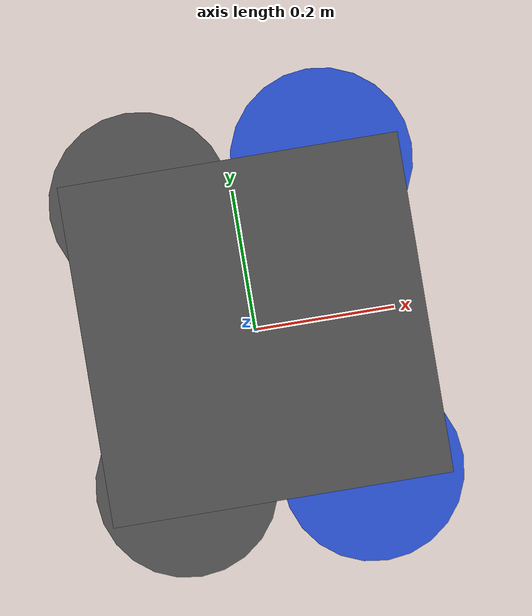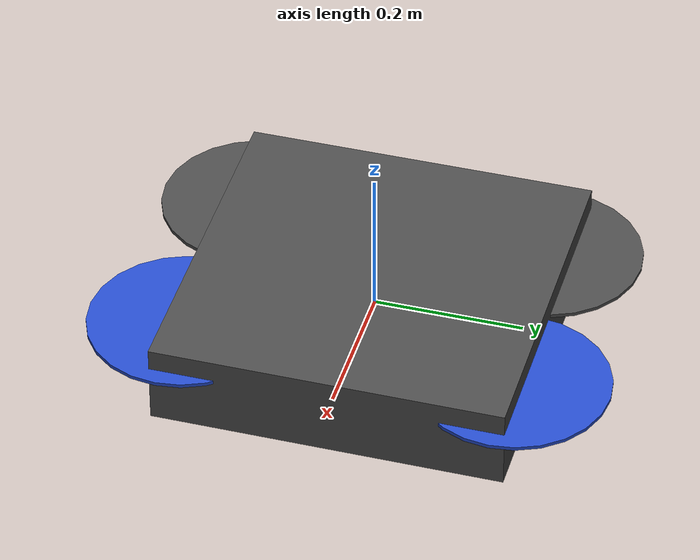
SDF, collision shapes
<?xml version="1.0" ?>
<sdf version='1.6'>
  <model name='iris'>
    <link name='base_link'>
      <pose>0 0 0 0 0 0</pose>
      <inertial>
        <pose>0 0 0 0 0 0</pose>
        <mass>1.5</mass>
        <inertia>
          <ixx>0.029125</ixx>
          <ixy>0</ixy>
          <ixz>0</ixz>
          <iyy>0.029125</iyy>
          <iyz>0</iyz>
          <izz>0.055225</izz>
        </inertia>
      </inertial>
      <collision name='base_link_inertia_collision'>
        <pose>0 0 0 0 0 0</pose>
        <geometry>
          <box>
            <size>0.47 0.47 0.11</size>
          </box>
        </geometry>
        <surface>
          <contact>
            <ode>
              <min_depth>0.001</min_depth>
              <max_vel>0</max_vel>
            </ode>
          </contact>
          <friction>
            <ode/>
          </friction>
        </surface>
      </collision>
      <visual name='base_link_inertia_visual'>
        <pose>0 0 0 0 0 0</pose>
        <geometry>
          <mesh>
            <scale>1 1 1</scale>
            <uri>model://iris/meshes/iris.stl</uri>
          </mesh>
        </geometry>
        <material>
          <script>
            <name>Gazebo/DarkGrey</name>
            <uri>file://media/materials/scripts/gazebo.material</uri>
          </script>
        </material>
      </visual>
      <gravity>1</gravity>
      <velocity_decay/>
    </link>
    <link name='/imu_link'>
      <pose>0 0 0.02 0 0 0</pose>
      <inertial>
        <pose>0 0 0 0 0 0</pose>
        <mass>0.015</mass>
        <inertia>
          <ixx>1e-05</ixx>
          <ixy>0</ixy>
          <ixz>0</ixz>
          <iyy>1e-05</iyy>
          <iyz>0</iyz>
          <izz>1e-05</izz>
        </inertia>
      </inertial>
    </link>
    <joint name='/imu_joint' type='revolute'>
      <child>/imu_link</child>
      <parent>base_link</parent>
      <axis>
        <xyz>1 0 0</xyz>
        <limit>
          <lower>0</lower>
          <upper>0</upper>
          <effort>0</effort>
          <velocity>0</velocity>
        </limit>
        <dynamics>
          <spring_reference>0</spring_reference>
          <spring_stiffness>0</spring_stiffness>
        </dynamics>
        <use_parent_model_frame>1</use_parent_model_frame>
      </axis>
    </joint>
    <joint name="realsense_camera_joint" type="fixed">
      <child>camera_link</child>
      <parent>base_link</parent>
      <axis>
        <xyz>0 0 1</xyz>
        <limit>
          <upper>0</upper>
          <lower>0</lower>
        </limit>
        <use_parent_model_frame>1</use_parent_model_frame>
      </axis>
    </joint>
    <link name="camera_link">
      <pose>0.12 0 0 1.5708 0 1.5708</pose>
      <inertial>
        <mass>0.0564</mass>
        <inertia>
          <ixx>4.1e-05</ixx>
          <ixy>0</ixy>
          <ixz>0</ixz>
          <iyy>5.9e-06</iyy>
          <iyz>0</iyz>
          <izz>5.9e-06</izz>
        </inertia>
      </inertial>
      <self_collide>0</self_collide>
      <kinematic>0</kinematic>
      <gravity>1</gravity>
      <visual name="visual">
        <geometry>
         <mesh>
            <uri>model://D435i/meshes/D435i.dae</uri>
          </mesh>
        </geometry>
      </visual>
      <collision name='collision'>
        <geometry>
          <box>
            <size>0.02505 0.090 0.025</size>
          </box>
        </geometry>
        <surface>
          <friction>
            <ode>
              <mu>1</mu>
              <mu2>1</mu2>
              <fdir1>0 0 0</fdir1>
              <slip1>0</slip1>
              <slip2>0</slip2>
            </ode>
          </friction>
          <bounce>
            <restitution_coefficient>0</restitution_coefficient>
            <threshold>1e+06</threshold>
          </bounce>
          <contact>
            <collide_without_contact>0</collide_without_contact>
            <collide_without_contact_bitmask>1</collide_without_contact_bitmask>
            <collide_bitmask>1</collide_bitmask>
            <ode>
              <soft_cfm>0</soft_cfm>
              <soft_erp>0.2</soft_erp>
              <kp>1e+13</kp>
              <kd>1</kd>
              <max_vel>0.01</max_vel>
              <min_depth>0</min_depth>
            </ode>
            <bullet>
              <split_impulse>1</split_impulse>
              <split_impulse_penetration_threshold>-0.01</split_impulse_penetration_threshold>
              <soft_cfm>0</soft_cfm>
              <soft_erp>0.2</soft_erp>
              <kp>1e+13</kp>
              <kd>1</kd>
            </bullet>
          </contact>
        </surface>
      </collision>
    </link>
    <link name="camera_color_frame">
      <pose>0.12 0.0325 0.00 0.00 -0.00 -0.00</pose>
      <inertial>
        <pose frame=''>0 0 0 0 -0 0</pose>
        <mass>0.0015</mass>
        <inertia>
          <ixx>1e-06</ixx>
          <ixy>0</ixy>
          <ixz>0</ixz>
          <iyy>1e-06</iyy>
          <iyz>0</iyz>
          <izz>1e-06</izz>
        </inertia>
      </inertial>
      <sensor name="color" type="camera">
        <camera name="color">
          <horizontal_fov>1.211</horizontal_fov>
          <image>
            <width>640</width>
            <height>480</height>
            <format>RGB_INT8</format>
          </image>
          <clip>
            <near>0.1</near>
            <far>100</far>
          </clip>
          <noise>
            <type>gaussian</type>
            <mean>0.0</mean>
            <stddev>0.007</stddev>
          </noise>
        </camera>
        <always_on>1</always_on>
        <update_rate>30</update_rate>
        <visualize>1</visualize>
      </sensor>
    </link>
    <joint name='camera_color_joint' type='revolute'>
      <child>camera_color_frame</child>
      <parent>camera_link</parent>
      <axis>
        <xyz>1 0 0</xyz>
        <limit>
          <lower>0</lower>
          <upper>0</upper>
          <effort>0</effort>
          <velocity>0</velocity>
        </limit>
        <dynamics>
          <spring_reference>0</spring_reference>
          <spring_stiffness>0</spring_stiffness>
        </dynamics>
        <use_parent_model_frame>1</use_parent_model_frame>
      </axis>
    </joint>
    <link name="camera_ired1_frame">
      <pose>0.12 0.02 0 0 0 0</pose>
      <inertial>
        <pose frame=''>0 0 0 0 -0 0</pose>
        <mass>0.0015</mass>
        <inertia>
          <ixx>1e-06</ixx>
          <ixy>0</ixy>
          <ixz>0</ixz>
          <iyy>1e-06</iyy>
          <iyz>0</iyz>
          <izz>1e-06</izz>
        </inertia>
      </inertial>
      <sensor name="ired1" type="camera">
        <camera name="ired1">
          <horizontal_fov>1.571</horizontal_fov>
          <image>
            <width>640</width>
            <height>480</height>
            <format>L_INT8</format>
          </image>
          <clip>
            <near>0.1</near>
            <far>100</far>
          </clip>
          <noise>
            <type>gaussian</type>
            <mean>0.0</mean>
            <stddev>0.007</stddev>
          </noise>
        </camera>
        <always_on>1</always_on>
        <update_rate>30</update_rate>
        <visualize>0</visualize>
      </sensor>
    </link>
    <joint name='camera_ired1_joint' type='revolute'>
      <child>camera_ired1_frame</child>
      <parent>camera_link</parent>
      <axis>
        <xyz>1 0 0</xyz>
        <limit>
          <lower>0</lower>
          <upper>0</upper>
          <effort>0</effort>
          <velocity>0</velocity>
        </limit>
        <dynamics>
          <spring_reference>0</spring_reference>
          <spring_stiffness>0</spring_stiffness>
        </dynamics>
        <use_parent_model_frame>1</use_parent_model_frame>
      </axis>
    </joint>
    <link name="camera_ired2_frame">
      <pose>0.12 -0.03 0 0 -1.57 1.57</pose>
      <inertial>
        <pose frame=''>0 0 0 0 -0 0</pose>
        <mass>0.0015</mass>
        <inertia>
          <ixx>1e-06</ixx>
          <ixy>0</ixy>
          <ixz>0</ixz>
          <iyy>1e-06</iyy>
          <iyz>0</iyz>
          <izz>1e-06</izz>
        </inertia>
      </inertial>
      <sensor name="ired2" type="camera">
        <camera name="ired2">
          <horizontal_fov>1.571</horizontal_fov>
          <image>
            <width>640</width>
            <height>480</height>
            <format>L_INT8</format>
          </image>
          <clip>
            <near>0.1</near>
            <far>100</far>
          </clip>
          <noise>
            <type>gaussian</type>
            <mean>0.0</mean>
            <stddev>0.007</stddev>
          </noise>
        </camera>
        <always_on>1</always_on>
        <update_rate>30</update_rate>
        <visualize>0</visualize>
      </sensor>
    </link>
    <joint name='camera_ired2_joint' type='revolute'>
      <child>camera_ired2_frame</child>
      <parent>camera_link</parent>
      <axis>
        <xyz>1 0 0</xyz>
        <limit>
          <lower>0</lower>
          <upper>0</upper>
          <effort>0</effort>
          <velocity>0</velocity>
        </limit>
        <dynamics>
          <spring_reference>0</spring_reference>
          <spring_stiffness>0</spring_stiffness>
        </dynamics>
        <use_parent_model_frame>1</use_parent_model_frame>
      </axis>
    </joint>
    <link name="camera_depth_frame">
      <pose>0.12 0.0325 0 0 0 0</pose>
      <inertial>
        <pose frame=''>0 0 0 0 -0 0</pose>
        <mass>0.0015</mass>
        <inertia>
          <ixx>1e-06</ixx>
          <ixy>0</ixy>
          <ixz>0</ixz>
          <iyy>1e-06</iyy>
          <iyz>0</iyz>
          <izz>1e-06</izz>
        </inertia>
      </inertial>
      <sensor name="depth" type="depth">
        <camera name="depth">
          <horizontal_fov>1.571</horizontal_fov>
          <image>
            <width>640</width>
            <height>480</height>
          </image>
          <clip>
            <near>0.1</near>
            <far>100</far>
          </clip>
          <noise>
            <type>gaussian</type>
            <mean>0.0</mean>
            <stddev>0.007</stddev>
          </noise>
        </camera>
        <always_on>1</always_on>
        <update_rate>30</update_rate>
        <visualize>0</visualize>
      </sensor>
    </link>
    <joint name='camera_depth_joint' type='revolute'>
      <child>camera_depth_frame</child>
      <parent>camera_link</parent>
      <axis>
        <xyz>1 0 0</xyz>
        <limit>
          <lower>0</lower>
          <upper>0</upper>
          <effort>0</effort>
          <velocity>0</velocity>
        </limit>
        <dynamics>
          <spring_reference>0</spring_reference>
          <spring_stiffness>0</spring_stiffness>
        </dynamics>
        <use_parent_model_frame>1</use_parent_model_frame>
      </axis>
    </joint>
    <link name='rotor_0'>
      <pose>0.13 -0.22 0.023 0 0 0</pose>
      <inertial>
        <pose>0 0 0 0 0 0</pose>
        <mass>0.005</mass>
        <inertia>
          <ixx>9.75e-07</ixx>
          <ixy>0</ixy>
          <ixz>0</ixz>
          <iyy>0.000273104</iyy>
          <iyz>0</iyz>
          <izz>0.000274004</izz>
        </inertia>
      </inertial>
      <collision name='rotor_0_collision'>
        <pose>0 0 0 0 0 0</pose>
        <geometry>
          <cylinder>
            <length>0.005</length>
            <radius>0.128</radius>
          </cylinder>
        </geometry>
        <surface>
          <contact>
            <ode/>
          </contact>
          <friction>
            <ode/>
          </friction>
        </surface>
      </collision>
      <visual name='rotor_0_visual'>
        <pose>0 0 0 0 0 0</pose>
        <geometry>
          <mesh>
            <scale>1 1 1</scale>
            <uri>model://iris/meshes/iris_prop_ccw.dae</uri>
          </mesh>
        </geometry>
        <material>
          <script>
            <name>Gazebo/Blue</name>
            <uri>file://media/materials/scripts/gazebo.material</uri>
          </script>
        </material>
      </visual>
      <gravity>1</gravity>
      <velocity_decay/>
    </link>
    <joint name='rotor_0_joint' type='revolute'>
      <child>rotor_0</child>
      <parent>base_link</parent>
      <axis>
        <xyz>0 0 1</xyz>
        <limit>
          <lower>-1e+16</lower>
          <upper>1e+16</upper>
        </limit>
        <dynamics>
          <spring_reference>0</spring_reference>
          <spring_stiffness>0</spring_stiffness>
        </dynamics>
        <use_parent_model_frame>1</use_parent_model_frame>
      </axis>
    </joint>
    <link name='rotor_1'>
      <pose>-0.13 0.2 0.023 0 0 0</pose>
      <inertial>
        <pose>0 0 0 0 0 0</pose>
        <mass>0.005</mass>
        <inertia>
          <ixx>9.75e-07</ixx>
          <ixy>0</ixy>
          <ixz>0</ixz>
          <iyy>0.000273104</iyy>
          <iyz>0</iyz>
          <izz>0.000274004</izz>
        </inertia>
      </inertial>
      <collision name='rotor_1_collision'>
        <pose>0 0 0 0 0 0</pose>
        <geometry>
          <cylinder>
            <length>0.005</length>
            <radius>0.128</radius>
          </cylinder>
        </geometry>
        <surface>
          <contact>
            <ode/>
          </contact>
          <friction>
            <ode/>
          </friction>
        </surface>
      </collision>
      <visual name='rotor_1_visual'>
        <pose>0 0 0 0 0 0</pose>
        <geometry>
          <mesh>
            <scale>1 1 1</scale>
            <uri>model://iris/meshes/iris_prop_ccw.dae</uri>
          </mesh>
        </geometry>
        <material>
          <script>
            <name>Gazebo/DarkGrey</name>
            <uri>file://media/materials/scripts/gazebo.material</uri>
          </script>
        </material>
      </visual>
      <gravity>1</gravity>
      <velocity_decay/>
    </link>
    <joint name='rotor_1_joint' type='revolute'>
      <child>rotor_1</child>
      <parent>base_link</parent>
      <axis>
        <xyz>0 0 1</xyz>
        <limit>
          <lower>-1e+16</lower>
          <upper>1e+16</upper>
        </limit>
        <dynamics>
          <spring_reference>0</spring_reference>
          <spring_stiffness>0</spring_stiffness>
        </dynamics>
        <use_parent_model_frame>1</use_parent_model_frame>
      </axis>
    </joint>
    <link name='rotor_2'>
      <pose>0.13 0.22 0.023 0 0 0</pose>
      <inertial>
        <pose>0 0 0 0 0 0</pose>
        <mass>0.005</mass>
        <inertia>
          <ixx>9.75e-07</ixx>
          <ixy>0</ixy>
          <ixz>0</ixz>
          <iyy>0.000273104</iyy>
          <iyz>0</iyz>
          <izz>0.000274004</izz>
        </inertia>
      </inertial>
      <collision name='rotor_2_collision'>
        <pose>0 0 0 0 0 0</pose>
        <geometry>
          <cylinder>
            <length>0.005</length>
            <radius>0.128</radius>
          </cylinder>
        </geometry>
        <surface>
          <contact>
            <ode/>
          </contact>
          <friction>
            <ode/>
          </friction>
        </surface>
      </collision>
      <visual name='rotor_2_visual'>
        <pose>0 0 0 0 0 0</pose>
        <geometry>
          <mesh>
            <scale>1 1 1</scale>
            <uri>model://iris/meshes/iris_prop_cw.dae</uri>
          </mesh>
        </geometry>
        <material>
          <script>
            <name>Gazebo/Blue</name>
            <uri>file://media/materials/scripts/gazebo.material</uri>
          </script>
        </material>
      </visual>
      <gravity>1</gravity>
      <velocity_decay/>
    </link>
    <joint name='rotor_2_joint' type='revolute'>
      <child>rotor_2</child>
      <parent>base_link</parent>
      <axis>
        <xyz>0 0 1</xyz>
        <limit>
          <lower>-1e+16</lower>
          <upper>1e+16</upper>
        </limit>
        <dynamics>
          <spring_reference>0</spring_reference>
          <spring_stiffness>0</spring_stiffness>
        </dynamics>
        <use_parent_model_frame>1</use_parent_model_frame>
      </axis>
    </joint>
    <link name='rotor_3'>
      <pose>-0.13 -0.2 0.023 0 0 0</pose>
      <inertial>
        <pose>0 0 0 0 0 0</pose>
        <mass>0.005</mass>
        <inertia>
          <ixx>9.75e-07</ixx>
          <ixy>0</ixy>
          <ixz>0</ixz>
          <iyy>0.000273104</iyy>
          <iyz>0</iyz>
          <izz>0.000274004</izz>
        </inertia>
      </inertial>
      <collision name='rotor_3_collision'>
        <pose>0 0 0 0 0 0</pose>
        <geometry>
          <cylinder>
            <length>0.005</length>
            <radius>0.128</radius>
          </cylinder>
        </geometry>
        <surface>
          <contact>
            <ode/>
          </contact>
          <friction>
            <ode/>
          </friction>
        </surface>
      </collision>
      <visual name='rotor_3_visual'>
        <pose>0 0 0 0 0 0</pose>
        <geometry>
          <mesh>
            <scale>1 1 1</scale>
            <uri>model://iris/meshes/iris_prop_cw.dae</uri>
          </mesh>
        </geometry>
        <material>
          <script>
            <name>Gazebo/DarkGrey</name>
            <uri>file://media/materials/scripts/gazebo.material</uri>
          </script>
        </material>
      </visual>
      <gravity>1</gravity>
      <velocity_decay/>
    </link>
    <joint name='rotor_3_joint' type='revolute'>
      <child>rotor_3</child>
      <parent>base_link</parent>
      <axis>
        <xyz>0 0 1</xyz>
        <limit>
          <lower>-1e+16</lower>
          <upper>1e+16</upper>
        </limit>
        <dynamics>
          <spring_reference>0</spring_reference>
          <spring_stiffness>0</spring_stiffness>
        </dynamics>
        <use_parent_model_frame>1</use_parent_model_frame>
      </axis>
    </joint>
    <plugin name='rosbag' filename='libgazebo_multirotor_base_plugin.so'>
      <robotNamespace/>
      <linkName>base_link</linkName>
      <rotorVelocitySlowdownSim>10</rotorVelocitySlowdownSim>
    </plugin>
    <plugin name='front_right_motor_model' filename='libgazebo_motor_model.so'>
      <robotNamespace/>
      <jointName>rotor_0_joint</jointName>
      <linkName>rotor_0</linkName>
      <turningDirection>ccw</turningDirection>
      <timeConstantUp>0.0125</timeConstantUp>
      <timeConstantDown>0.025</timeConstantDown>
      <maxRotVelocity>1100</maxRotVelocity>
      <motorConstant>5.84e-06</motorConstant>
      <momentConstant>0.06</momentConstant>
      <commandSubTopic>/gazebo/command/motor_speed</commandSubTopic>
      <motorNumber>0</motorNumber>
      <rotorDragCoefficient>0.000175</rotorDragCoefficient>
      <rollingMomentCoefficient>1e-06</rollingMomentCoefficient>
      <motorSpeedPubTopic>/motor_speed/0</motorSpeedPubTopic>
      <rotorVelocitySlowdownSim>10</rotorVelocitySlowdownSim>
    </plugin>
    <plugin name='back_left_motor_model' filename='libgazebo_motor_model.so'>
      <robotNamespace/>
      <jointName>rotor_1_joint</jointName>
      <linkName>rotor_1</linkName>
      <turningDirection>ccw</turningDirection>
      <timeConstantUp>0.0125</timeConstantUp>
      <timeConstantDown>0.025</timeConstantDown>
      <maxRotVelocity>1100</maxRotVelocity>
      <motorConstant>5.84e-06</motorConstant>
      <momentConstant>0.06</momentConstant>
      <commandSubTopic>/gazebo/command/motor_speed</commandSubTopic>
      <motorNumber>1</motorNumber>
      <rotorDragCoefficient>0.000175</rotorDragCoefficient>
      <rollingMomentCoefficient>1e-06</rollingMomentCoefficient>
      <motorSpeedPubTopic>/motor_speed/1</motorSpeedPubTopic>
      <rotorVelocitySlowdownSim>10</rotorVelocitySlowdownSim>
    </plugin>
    <plugin name='front_left_motor_model' filename='libgazebo_motor_model.so'>
      <robotNamespace/>
      <jointName>rotor_2_joint</jointName>
      <linkName>rotor_2</linkName>
      <turningDirection>cw</turningDirection>
      <timeConstantUp>0.0125</timeConstantUp>
      <timeConstantDown>0.025</timeConstantDown>
      <maxRotVelocity>1100</maxRotVelocity>
      <motorConstant>5.84e-06</motorConstant>
      <momentConstant>0.06</momentConstant>
      <commandSubTopic>/gazebo/command/motor_speed</commandSubTopic>
      <motorNumber>2</motorNumber>
      <rotorDragCoefficient>0.000175</rotorDragCoefficient>
      <rollingMomentCoefficient>1e-06</rollingMomentCoefficient>
      <motorSpeedPubTopic>/motor_speed/2</motorSpeedPubTopic>
      <rotorVelocitySlowdownSim>10</rotorVelocitySlowdownSim>
    </plugin>
    <plugin name='back_right_motor_model' filename='libgazebo_motor_model.so'>
      <robotNamespace/>
      <jointName>rotor_3_joint</jointName>
      <linkName>rotor_3</linkName>
      <turningDirection>cw</turningDirection>
      <timeConstantUp>0.0125</timeConstantUp>
      <timeConstantDown>0.025</timeConstantDown>
      <maxRotVelocity>1100</maxRotVelocity>
      <motorConstant>5.84e-06</motorConstant>
      <momentConstant>0.06</momentConstant>
      <commandSubTopic>/gazebo/command/motor_speed</commandSubTopic>
      <motorNumber>3</motorNumber>
      <rotorDragCoefficient>0.000175</rotorDragCoefficient>
      <rollingMomentCoefficient>1e-06</rollingMomentCoefficient>
      <motorSpeedPubTopic>/motor_speed/3</motorSpeedPubTopic>
      <rotorVelocitySlowdownSim>10</rotorVelocitySlowdownSim>
    </plugin>
    <joint name='gps0_joint' type='fixed'>
      <child>gps0::link</child>
      <parent>base_link</parent>
    </joint>
    <plugin name='groundtruth_plugin' filename='libgazebo_groundtruth_plugin.so'>
      <robotNamespace/>
    </plugin>
    <plugin name='magnetometer_plugin' filename='libgazebo_magnetometer_plugin.so'>
      <robotNamespace/>
      <pubRate>100</pubRate>
      <noiseDensity>0.0004</noiseDensity>
      <randomWalk>6.4e-06</randomWalk>
      <biasCorrelationTime>600</biasCorrelationTime>
      <magTopic>/mag</magTopic>
    </plugin>
    <plugin name='barometer_plugin' filename='libgazebo_barometer_plugin.so'>
      <robotNamespace/>
      <pubRate>50</pubRate>
      <baroTopic>/baro</baroTopic>
      <baroDriftPaPerSec>0</baroDriftPaPerSec>
    </plugin>
    <plugin name='mavlink_interface' filename='libgazebo_mavlink_interface.so'>
      <robotNamespace/>
      <imuSubTopic>/imu</imuSubTopic>
      <magSubTopic>/mag</magSubTopic>
      <baroSubTopic>/baro</baroSubTopic>
      <mavlink_addr>INADDR_ANY</mavlink_addr>
      <mavlink_tcp_port>4560</mavlink_tcp_port>
      <mavlink_udp_port>14560</mavlink_udp_port>
      <serialEnabled>0</serialEnabled>
      <serialDevice>/dev/ttyACM0</serialDevice>
      <baudRate>921600</baudRate>
      <qgc_addr>INADDR_ANY</qgc_addr>
      <qgc_udp_port>14550</qgc_udp_port>
      <sdk_addr>INADDR_ANY</sdk_addr>
      <sdk_udp_port>14540</sdk_udp_port>
      <hil_mode>0</hil_mode>
      <hil_state_level>0</hil_state_level>
      <send_vision_estimation>0</send_vision_estimation>
      <send_odometry>1</send_odometry>
      <enable_lockstep>1</enable_lockstep>
      <use_tcp>1</use_tcp>
      <motorSpeedCommandPubTopic>/gazebo/command/motor_speed</motorSpeedCommandPubTopic>
      <control_channels>
        <channel name='rotor1'>
          <input_index>0</input_index>
          <input_offset>0</input_offset>
          <input_scaling>1000</input_scaling>
          <zero_position_disarmed>0</zero_position_disarmed>
          <zero_position_armed>100</zero_position_armed>
          <joint_control_type>velocity</joint_control_type>
        </channel>
        <channel name='rotor2'>
          <input_index>1</input_index>
          <input_offset>0</input_offset>
          <input_scaling>1000</input_scaling>
          <zero_position_disarmed>0</zero_position_disarmed>
          <zero_position_armed>100</zero_position_armed>
          <joint_control_type>velocity</joint_control_type>
        </channel>
        <channel name='rotor3'>
          <input_index>2</input_index>
          <input_offset>0</input_offset>
          <input_scaling>1000</input_scaling>
          <zero_position_disarmed>0</zero_position_disarmed>
          <zero_position_armed>100</zero_position_armed>
          <joint_control_type>velocity</joint_control_type>
        </channel>
        <channel name='rotor4'>
          <input_index>3</input_index>
          <input_offset>0</input_offset>
          <input_scaling>1000</input_scaling>
          <zero_position_disarmed>0</zero_position_disarmed>
          <zero_position_armed>100</zero_position_armed>
          <joint_control_type>velocity</joint_control_type>
        </channel>
        <channel name='rotor5'>
          <input_index>4</input_index>
          <input_offset>1</input_offset>
          <input_scaling>324.6</input_scaling>
          <zero_position_disarmed>0</zero_position_disarmed>
          <zero_position_armed>0</zero_position_armed>
          <joint_control_type>velocity</joint_control_type>
          <joint_control_pid>
            <p>0.1</p>
            <i>0</i>
            <d>0</d>
            <iMax>0.0</iMax>
            <iMin>0.0</iMin>
            <cmdMax>2</cmdMax>
            <cmdMin>-2</cmdMin>
          </joint_control_pid>
          <joint_name>zephyr_delta_wing::propeller_joint</joint_name>
        </channel>
        <channel name='rotor6'>
          <input_index>5</input_index>
          <input_offset>0</input_offset>
          <input_scaling>0.524</input_scaling>
          <zero_position_disarmed>0</zero_position_disarmed>
          <zero_position_armed>0</zero_position_armed>
          <joint_control_type>position</joint_control_type>
          <joint_name>zephyr_delta_wing::flap_left_joint</joint_name>
          <joint_control_pid>
            <p>10.0</p>
            <i>0</i>
            <d>0</d>
            <iMax>0</iMax>
            <iMin>0</iMin>
            <cmdMax>20</cmdMax>
            <cmdMin>-20</cmdMin>
          </joint_control_pid>
        </channel>
        <channel name='rotor7'>
          <input_index>6</input_index>
          <input_offset>0</input_offset>
          <input_scaling>0.524</input_scaling>
          <zero_position_disarmed>0</zero_position_disarmed>
          <zero_position_armed>0</zero_position_armed>
          <joint_control_type>position</joint_control_type>
          <joint_name>zephyr_delta_wing::flap_right_joint</joint_name>
          <joint_control_pid>
            <p>10.0</p>
            <i>0</i>
            <d>0</d>
            <iMax>0</iMax>
            <iMin>0</iMin>
            <cmdMax>20</cmdMax>
            <cmdMin>-20</cmdMin>
          </joint_control_pid>
        </channel>
        <channel name='rotor8'>
          <input_index>7</input_index>
          <input_offset>0</input_offset>
          <input_scaling>0.524</input_scaling>
          <zero_position_disarmed>0</zero_position_disarmed>
          <zero_position_armed>0</zero_position_armed>
          <joint_control_type>position</joint_control_type>
        </channel>
      </control_channels>
    </plugin>
    <static>0</static>
    <plugin name='rotors_gazebo_imu_plugin' filename='libgazebo_imu_plugin.so'>
      <robotNamespace/>
      <linkName>/imu_link</linkName>
      <imuTopic>/imu</imuTopic>
      <gyroscopeNoiseDensity>0.00018665</gyroscopeNoiseDensity>
      <gyroscopeRandomWalk>3.8785e-05</gyroscopeRandomWalk>
      <gyroscopeBiasCorrelationTime>1000.0</gyroscopeBiasCorrelationTime>
      <gyroscopeTurnOnBiasSigma>0.0087</gyroscopeTurnOnBiasSigma>
      <accelerometerNoiseDensity>0.00186</accelerometerNoiseDensity>
      <accelerometerRandomWalk>0.006</accelerometerRandomWalk>
      <accelerometerBiasCorrelationTime>300.0</accelerometerBiasCorrelationTime>
      <accelerometerTurnOnBiasSigma>0.196</accelerometerTurnOnBiasSigma>
    </plugin>
    <plugin name="camera" filename="librealsense_gazebo_plugin.so">
      <robotNamespace/>
       <depthUpdateRate>30</depthUpdateRate>
       <colorUpdateRate>30</colorUpdateRate>
       <infraredUpdateRate>30</infraredUpdateRate>
       <depthTopicName>depth/image_raw</depthTopicName>
       <depthCameraInfoTopicName>depth/camera_info</depthCameraInfoTopicName>
       <colorTopicName>color/image_raw</colorTopicName>
       <colorCameraInfoTopicName>color/camera_info</colorCameraInfoTopicName>
       <infrared1TopicName>infra1/image_raw</infrared1TopicName>
       <infrared1CameraInfoTopicName>infra1/camera_info</infrared1CameraInfoTopicName>
       <infrared2TopicName>infra2/image_raw</infrared2TopicName>
       <infrared2CameraInfoTopicName>infra2/camera_info</infrared2CameraInfoTopicName>
       <colorOpticalframeName>camera_color_frame</colorOpticalframeName>
       <depthOpticalframeName>camera_depth_frame</depthOpticalframeName>
       <infrared1OpticalframeName>camera_ired1_frame</infrared1OpticalframeName>
       <infrared2OpticalframeName>camera_ired2_frame</infrared2OpticalframeName>
       <rangeMinDepth>0.2</rangeMinDepth>
       <rangeMaxDepth>10.0</rangeMaxDepth>
       <pointCloud>true</pointCloud>
       <pointCloudTopicName>depth/color/points</pointCloudTopicName>
       <pointCloudCutoff>0.25</pointCloudCutoff>
       <pointCloudCutoffMax>9.0</pointCloudCutoffMax>
     </plugin>
  </model>
</sdf>
